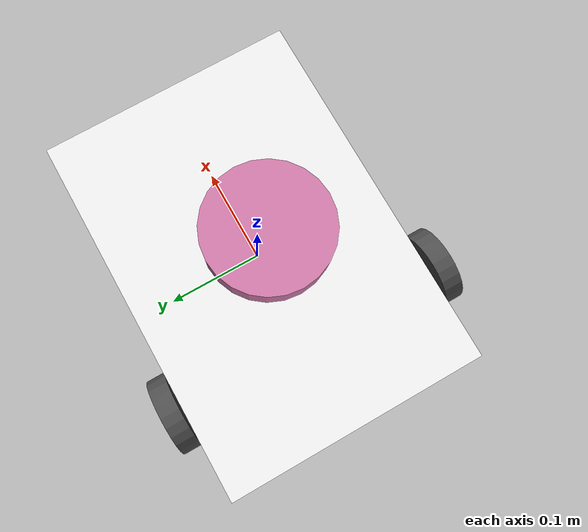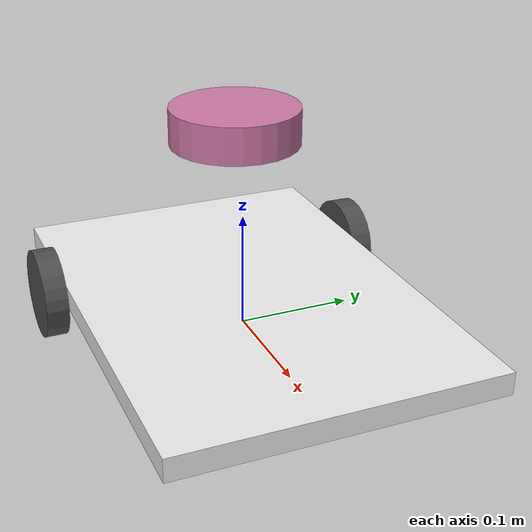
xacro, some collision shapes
<?xml version="1.0" ?>
<robot name="agv" xmlns:xacro="http://ros.org/wiki/xacro">
  <xacro:include filename="$(find agv)/urdf/common_properties.xacro"/>
  <xacro:include filename="$(find agv)/urdf/agv.gazebo.xacro"/>

  <link name="base_footprint"/>

  <joint name="base_joint" type="fixed">
    <parent link="base_footprint"/>
    <child link="base_link"/>
    <origin xyz="0.0 0.0 0.010" rpy="0 0 0"/>
  </joint>

      <link name="base_link">
        <inertial>
            <mass value="0.1"/>
            <origin xyz="0 0 0.02"/>
            <inertia ixx="0.482916666667e-1" ixy="0" ixz="0" iyy="0.482916666667e-1" iyz="0" izz="0.05625"/>
        </inertial>
        <visual>
            <origin rpy="0 0 0" xyz="0 0 0.01"/>
            <geometry>
                <box size="0.4 0.28 0.02" />
            </geometry>
            <material name="White"/>
        </visual>
        <collision>
            <origin rpy="0 0 0 " xyz="0 0 0.01"/>
            <geometry>
                <box size="0.4 0.28 0.02" />
            </geometry>
        </collision>
    </link>

    <!--Caster Left Wheel  -->
    <link name="caster_left_link">
        <visual>
            <origin rpy="1.57079632679 0 0" xyz="0 0.02 0"/>
            <geometry>
                <sphere radius="0.025"/>
            </geometry>
            <material name="Black"/>
        </visual>
        <collision>
            <geometry>
                <sphere radius="0.025"/>
            </geometry>
            <origin rpy="1.57079632679 0 0" xyz="0 0.02 0"/>
        </collision>
        <inertial>
            <mass value="0.05"/>
            <origin xyz="0 0 0"/>
            <inertia ixx="0.01" ixy="0.0" ixz="0.0" iyy="0.01" iyz="0.0" izz="0.01"/>
        </inertial>
    </link>
    <joint name="caster_left_joint" type="fixed">
        <parent link="base_link"/>
        <child link="caster_left_link"/>
        <origin rpy="-1.57079632679 0 0" xyz="0.115 0.1 0.007"/>
    </joint>

    <!--Caster Right Wheel  -->
    <link name="caster_right_link">
        <visual>
            <origin rpy="1.57079632679 0 0" xyz="0.02 0.02 0 "/>
            <geometry>
                <sphere radius="0.025"/>
            </geometry>
            <material name="Black"/>
        </visual>
        <collision>
            <geometry>
                <sphere radius="0.025"/>
            </geometry>
            <origin rpy="1.57079632679 0 0" xyz="0 0.02 0 "/>
        </collision>
        <inertial>
            <mass value="0.05"/>
            <origin xyz="0 0 0"/>
            <inertia ixx="0.01" ixy="0.0" ixz="0.0" iyy="0.01" iyz="0.0" izz="0.01"/>
        </inertial>
    </link>

    <joint name="caster_right_joint" type="fixed">
        <parent link="base_link"/>
        <child link="caster_right_link"/>
                 <origin rpy="-1.57079632679 0 0" xyz="0.115 -0.1 0.007"/>
        <axis rpy="0 0 0" xyz="0 1 0"/>
    </joint>

  <joint name="wheel_left_joint" type="continuous">
    <parent link="base_link"/>
    <child link="wheel_left_link"/>
    <origin xyz="-0.1 0.15 0.0" rpy="0 0 0"/>
    <axis xyz="0 1 0"/>
  </joint>

  <link name="wheel_left_link">
            <visual>
            <origin rpy="1.57079632679 0  0 " xyz="0 0 0"/>
            <geometry>
                <cylinder length="0.02" radius="0.04"/>
            </geometry>
            <material name="DarkGray"/>
            </visual>
        <collision>
            <origin rpy="1.57079632679 0 0 " xyz="0 0 0"/>
            <geometry>
                <cylinder length="0.02" radius="0.04"/>
            </geometry>
        </collision>
        <inertial>
            <mass value="0.25"/>
            <origin xyz="0 0 0"/>
            <inertia ixx="0.00108333333333" ixy="0" ixz="0" iyy="0.00108333333333" iyz="0" izz="0.002"/>
        </inertial>
  </link>

  <joint name="wheel_right_joint" type="continuous">
    <parent link="base_link"/>
    <child link="wheel_right_link"/>
    <origin xyz="-0.1 -0.15 0.0" rpy="0 0 0"/>
    <axis xyz="0 1 0"/>
  </joint>

  <link name="wheel_right_link">
            <visual>
            <origin rpy="1.57079632679 0  0 " xyz="0 0 0"/>
            <geometry>
                <cylinder length="0.02" radius="0.04"/>
            </geometry>
            <material name="DarkGray"/>
        </visual>
        <collision>
            <origin rpy="1.57079632679 0 0 " xyz="0 0 0"/>
            <geometry>
                <cylinder length="0.02" radius="0.04"/>
            </geometry>
        </collision>
            <inertial>
            <mass value="0.25"/>
            <origin xyz="0 0 0"/>
            <inertia ixx="0.00108333333333" ixy="0" ixz="0" iyy="0.00108333333333" iyz="0" izz="0.002"/>
        </inertial>
  </link>

  <joint name="scan_joint" type="fixed">
    <parent link="base_link"/>
    <child link="base_scan"/>
    <origin xyz="-0.032 0 0.172" rpy="0 0 0"/>
  </joint>

  <link name="base_scan">
    <visual>
      <origin xyz="0 0 0.0" rpy="0 0 0"/>
      <geometry>
        <mesh filename="package://turtlebot3_description/meshes/sensors/lds.stl" scale="0.001 0.001 0.001"/>
      </geometry>
      <material name="dark"/>
    </visual>

    <collision>
      <origin xyz="0.015 0 -0.0065" rpy="0 0 0"/>
      <geometry>
        <cylinder length="0.0315" radius="0.055"/>
      </geometry>
    </collision>

    <inertial>
      <mass value="0.114" />
      <origin xyz="0 0 0" />
      <inertia ixx="0.001" ixy="0.0" ixz="0.0"
               iyy="0.001" iyz="0.0"
               izz="0.001" />
    </inertial>
  </link>

</robot>
